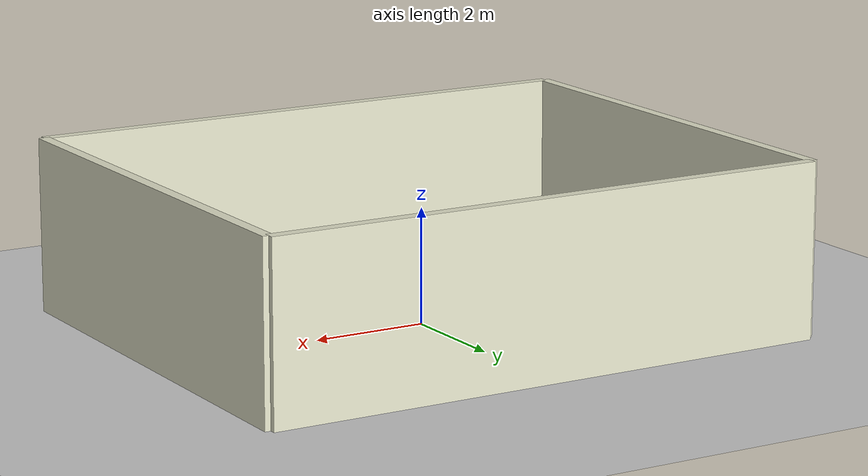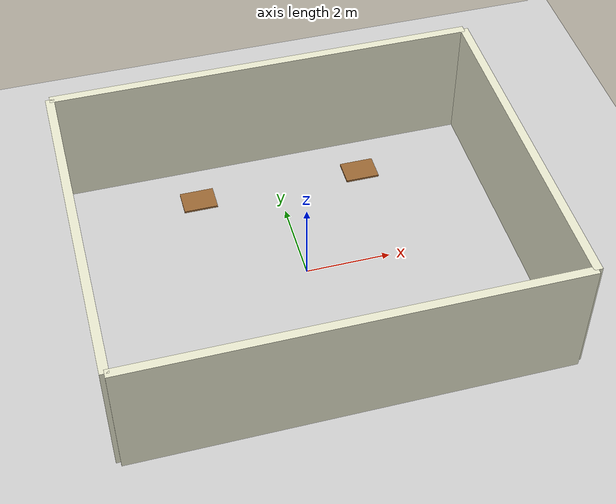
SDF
<sdf version="1.8">
 <world name="classroom">
  <physics type="ode">
   <real_time_update_rate>1000.0</real_time_update_rate>
   <max_step_size>0.001</max_step_size>
   <real_time_factor>1</real_time_factor>
  </physics>
  <plugin filename="gz-sim-physics-system" name="gz::sim::systems::Physics"/>
  <plugin filename="gz-sim-user-commands-system" name="gz::sim::systems::UserCommands"/>
  <plugin filename="gz-sim-scene-broadcaster-system" name="gz::sim::systems::SceneBroadcaster"/>
  <plugin filename="gz-sim-sensors-system" name="gz::sim::systems::Sensors">
   <render_engine>ogre2</render_engine>
  </plugin>
  <plugin filename="gz-sim-imu-system" name="gz::sim::systems::Imu"/>
  <light type="directional" name="sun">
   <pose>0 0 10 0 0 0</pose>
   <diffuse>0.8 0.8 0.8 1</diffuse>
   <specular>0.2 0.2 0.2 1</specular>
   <direction>-0.5 0.1 -0.9</direction>
   <attenuation>
    <range>1000</range>
    <constant>0.9</constant>
    <linear>0.01</linear>
    <quadratic>0.001</quadratic>
   </attenuation>
  </light>
  <model name="ground_plane">
   <static>true</static>
   <link name="link">
    <collision name="col"><geometry><plane><normal>0 0 1</normal><size>50 50</size></plane></geometry></collision>
    <visual name="vis">
     <geometry><plane><normal>0 0 1</normal><size>50 50</size></plane></geometry>
     <material><ambient>0.8 0.8 0.8 1</ambient><diffuse>0.8 0.8 0.8 1</diffuse></material>
    </visual>
   </link>
  </model>
  <model name="wall_front">
   <static>true</static>
   <pose>5.0 0.0 1.5 0 0 0</pose>
   <link name="link">
    <collision name="col"><geometry><box><size>0.2 8.0 3.0</size></box></geometry></collision>
    <visual name="vis">
     <geometry><box><size>0.2 8.0 3.0</size></box></geometry>
     <material><ambient>0.9 0.9 0.8 1</ambient><diffuse>0.9 0.9 0.8 1</diffuse></material>
    </visual>
   </link>
  </model>
  <model name="wall_back">
   <static>true</static>
   <pose>-5.0 0.0 1.5 0 0 0</pose>
   <link name="link">
    <collision name="col"><geometry><box><size>0.2 8.0 3.0</size></box></geometry></collision>
    <visual name="vis">
     <geometry><box><size>0.2 8.0 3.0</size></box></geometry>
     <material><ambient>0.9 0.9 0.8 1</ambient><diffuse>0.9 0.9 0.8 1</diffuse></material>
    </visual>
   </link>
  </model>
  <model name="wall_left">
   <static>true</static>
   <pose>0.0 4.0 1.5 0 0 0</pose>
   <link name="link">
    <collision name="col"><geometry><box><size>10.0 0.2 3.0</size></box></geometry></collision>
    <visual name="vis">
     <geometry><box><size>10.0 0.2 3.0</size></box></geometry>
     <material><ambient>0.9 0.9 0.8 1</ambient><diffuse>0.9 0.9 0.8 1</diffuse></material>
    </visual>
   </link>
  </model>
  <model name="wall_right">
   <static>true</static>
   <pose>0.0 -4.0 1.5 0 0 0</pose>
   <link name="link">
    <collision name="col"><geometry><box><size>10.0 0.2 3.0</size></box></geometry></collision>
    <visual name="vis">
     <geometry><box><size>10.0 0.2 3.0</size></box></geometry>
     <material><ambient>0.9 0.9 0.8 1</ambient><diffuse>0.9 0.9 0.8 1</diffuse></material>
    </visual>
   </link>
  </model>
  <model name="desk_A1">
   <static>true</static>
   <pose>2.0 2.5 0.4 0 0 0</pose>
   <link name="link">
    <collision name="col"><geometry><box><size>0.8 0.6 0.05</size></box></geometry></collision>
    <visual name="vis">
     <geometry><box><size>0.8 0.6 0.05</size></box></geometry>
     <material><ambient>0.6 0.4 0.2 1</ambient><diffuse>0.6 0.4 0.2 1</diffuse></material>
    </visual>
   </link>
  </model>
  <model name="desk_A2">
   <static>true</static>
   <pose>2.0 -2.5 0.4 0 0 0</pose>
   <link name="link">
    <collision name="col"><geometry><box><size>0.8 0.6 0.05</size></box></geometry></collision>
    <visual name="vis">
     <geometry><box><size>0.8 0.6 0.05</size></box></geometry>
     <material><ambient>0.6 0.4 0.2 1</ambient><diffuse>0.6 0.4 0.2 1</diffuse></material>
    </visual>
   </link>
  </model>
  <model name="desk_B1">
   <static>true</static>
   <pose>-2.0 2.5 0.4 0 0 0</pose>
   <link name="link">
    <collision name="col"><geometry><box><size>0.8 0.6 0.05</size></box></geometry></collision>
    <visual name="vis">
     <geometry><box><size>0.8 0.6 0.05</size></box></geometry>
     <material><ambient>0.6 0.4 0.2 1</ambient><diffuse>0.6 0.4 0.2 1</diffuse></material>
    </visual>
   </link>
  </model>
  <model name="desk_B2">
   <static>true</static>
   <pose>-2.0 -2.5 0.4 0 0 0</pose>
   <link name="link">
    <collision name="col"><geometry><box><size>0.8 0.6 0.05</size></box></geometry></collision>
    <visual name="vis">
     <geometry><box><size>0.8 0.6 0.05</size></box></geometry>
     <material><ambient>0.6 0.4 0.2 1</ambient><diffuse>0.6 0.4 0.2 1</diffuse></material>
    </visual>
   </link>
  </model>
 </world>
</sdf>
